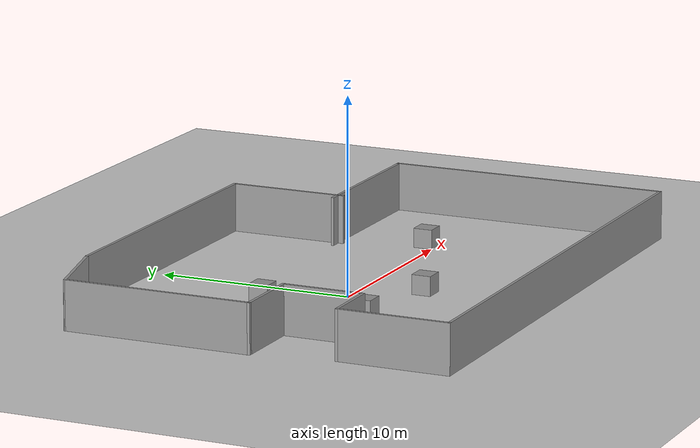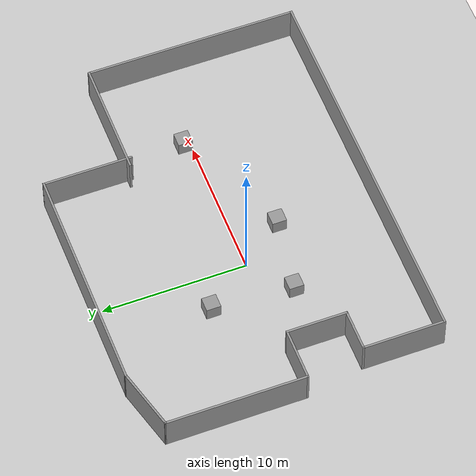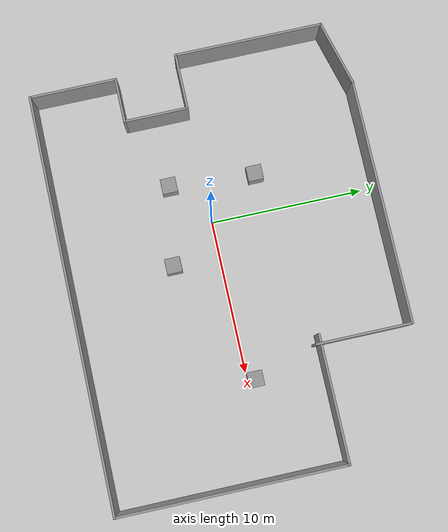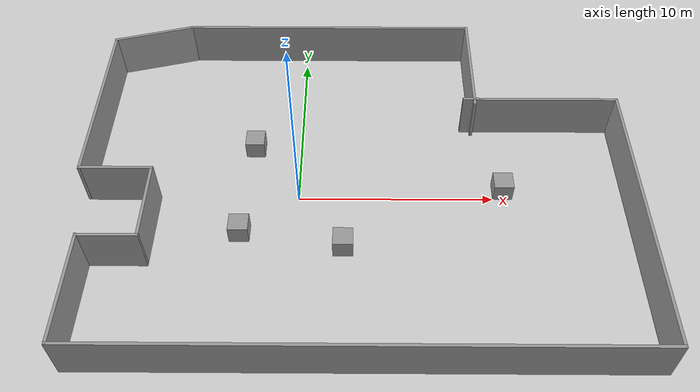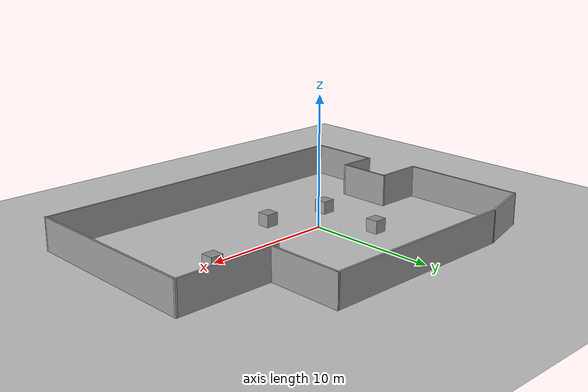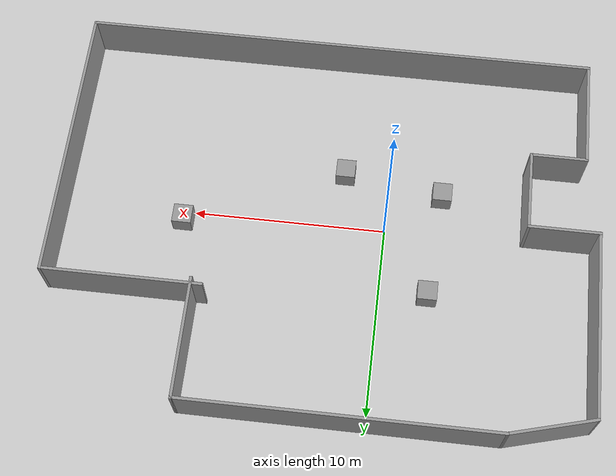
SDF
<sdf version="1.7">
 <world name="default">
  <light name="sun" type="directional">
   <pose>0 0 10 0 -0 0</pose>
   <diffuse>0.8 0.8 0.8 1</diffuse>
   <specular>0.2 0.2 0.2 1</specular>
   <attenuation>
    <range>1000</range>
    <constant>0.9</constant>
    <linear>0.01</linear>
    <quadratic>0.001</quadratic>
   </attenuation>
   <direction>-0.5 0.1 -0.9</direction>
   <spot><inner_angle>0</inner_angle><outer_angle>0</outer_angle><falloff>0</falloff></spot>
  </light>
  <model name="ground_plane">
   <static>1</static>
   <link name="link">
    <collision name="collision">
     <geometry><plane><normal>0 0 1</normal><size>100 100</size></plane></geometry>
     <surface>
      <contact><collide_bitmask>65535</collide_bitmask></contact>
      <friction><ode><mu>100</mu><mu2>50</mu2></ode></friction>
     </surface>
    </collision>
    <visual name="visual">
     <cast_shadows>0</cast_shadows>
     <geometry><plane><normal>0 0 1</normal><size>100 100</size></plane></geometry>
     <material>
      <script><uri>file://media/materials/scripts/gazebo.material</uri><name>Gazebo/Grey</name></script>
     </material>
    </visual>
   </link>
  </model>
  <gravity>0 0 -9.8</gravity>
  <magnetic_field>6e-06 2.3e-05 -4.2e-05</magnetic_field>
  <atmosphere type="adiabatic"/>
  <physics type="ode">
   <max_step_size>0.001</max_step_size>
   <real_time_factor>1</real_time_factor>
   <real_time_update_rate>1000</real_time_update_rate>
  </physics>
  <scene><ambient>0.4 0.4 0.4 1</ambient><background>0.7 0.7 0.7 1</background><shadows>1</shadows></scene>
  <spherical_coordinates>
   <surface_model>EARTH_WGS84</surface_model>
   <latitude_deg>0</latitude_deg>
   <longitude_deg>0</longitude_deg>
   <elevation>0</elevation>
   <heading_deg>0</heading_deg>
  </spherical_coordinates>
  <model name="ceph_world">
   <pose>2.99157 0.511359 0 0 -0 0</pose>
   <link name="Wall_0">
    <collision name="Wall_0_Collision">
     <geometry><box><size>4.25 0.15 2.5</size></box></geometry>
     <pose>0 0 1.25 0 -0 0</pose>
    </collision>
    <visual name="Wall_0_Visual">
     <pose>0 0 1.25 0 -0 0</pose>
     <geometry><box><size>4.25 0.15 2.5</size></box></geometry>
     <material>
      <script><uri>file://media/materials/scripts/gazebo.material</uri><name>Gazebo/Grey</name></script>
      <ambient>1 1 1 1</ambient>
     </material>
     <meta><layer>0</layer></meta>
    </visual>
    <pose>-10.1916 -2.57136 0 0 -0 -1.5708</pose>
   </link>
   <link name="Wall_11">
    <collision name="Wall_11_Collision">
     <geometry><box><size>4.5 0.15 2.5</size></box></geometry>
     <pose>0 0 1.25 0 -0 0</pose>
    </collision>
    <visual name="Wall_11_Visual">
     <pose>0 0 1.25 0 -0 0</pose>
     <geometry><box><size>4.5 0.15 2.5</size></box></geometry>
     <material>
      <script><uri>file://media/materials/scripts/gazebo.material</uri><name>Gazebo/Grey</name></script>
      <ambient>1 1 1 1</ambient>
     </material>
     <meta><layer>0</layer></meta>
    </visual>
    <pose>-11.6907 9.64157 0 0 -0 0.261799</pose>
   </link>
   <link name="Wall_12">
    <collision name="Wall_12_Collision">
     <geometry><box><size>16 0.15 2.5</size></box></geometry>
     <pose>0 0 1.25 0 -0 0</pose>
    </collision>
    <visual name="Wall_12_Visual">
     <pose>0 0 1.25 0 -0 0</pose>
     <geometry><box><size>16 0.15 2.5</size></box></geometry>
     <material>
      <script><uri>file://media/materials/scripts/gazebo.material</uri><name>Gazebo/Grey</name></script>
      <ambient>1 1 1 1</ambient>
     </material>
     <meta><layer>0</layer></meta>
    </visual>
    <pose>-1.6648 10.2045 0 0 -0 0</pose>
   </link>
   <link name="Wall_13">
    <collision name="Wall_13_Collision">
     <geometry><box><size>6.25 0.15 2.5</size></box></geometry>
     <pose>0 0 1.25 0 -0 0</pose>
    </collision>
    <visual name="Wall_13_Visual">
     <pose>0 0 1.25 0 -0 0</pose>
     <geometry><box><size>6.25 0.15 2.5</size></box></geometry>
     <material>
      <script><uri>file://media/materials/scripts/gazebo.material</uri><name>Gazebo/Grey</name></script>
      <ambient>1 1 1 1</ambient>
     </material>
     <meta><layer>0</layer></meta>
    </visual>
    <pose>6.26021 7.1545 0 0 -0 -1.5708</pose>
   </link>
   <link name="Wall_2">
    <collision name="Wall_2_Collision">
     <geometry><box><size>3 0.15 2.5</size></box></geometry>
     <pose>0 0 1.25 0 -0 0</pose>
    </collision>
    <visual name="Wall_2_Visual">
     <pose>0 0 1.25 0 -0 0</pose>
     <geometry><box><size>3 0.15 2.5</size></box></geometry>
     <material>
      <script><uri>file://media/materials/scripts/gazebo.material</uri><name>Gazebo/Grey</name></script>
      <ambient>1 1 1 1</ambient>
     </material>
     <meta><layer>0</layer></meta>
    </visual>
    <pose>-11.6166 -4.62136 0 0 -0 3.14159</pose>
   </link>
   <link name="Wall_3">
    <collision name="Wall_3_Collision">
     <geometry><box><size>5.75 0.15 2.5</size></box></geometry>
     <pose>0 0 1.25 0 -0 0</pose>
    </collision>
    <visual name="Wall_3_Visual">
     <pose>0 0 1.25 0 -0 0</pose>
     <geometry><box><size>5.75 0.15 2.5</size></box></geometry>
     <material>
      <script><uri>file://media/materials/scripts/gazebo.material</uri><name>Gazebo/Grey</name></script>
      <ambient>1 1 1 1</ambient>
     </material>
     <meta><layer>0</layer></meta>
    </visual>
    <pose>-13.0416 -7.42136 0 0 -0 -1.5708</pose>
   </link>
   <link name="Wall_4">
    <collision name="Wall_4_Collision">
     <geometry><box><size>27 0.15 2.5</size></box></geometry>
     <pose>0 0 1.25 0 -0 0</pose>
    </collision>
    <visual name="Wall_4_Visual">
     <pose>0 0 1.25 0 -0 0</pose>
     <geometry><box><size>27 0.15 2.5</size></box></geometry>
     <material>
      <script><uri>file://media/materials/scripts/gazebo.material</uri><name>Gazebo/Grey</name></script>
      <ambient>1 1 1 1</ambient>
     </material>
     <meta><layer>0</layer></meta>
    </visual>
    <pose>0.383428 -10.2214 0 0 -0 0</pose>
   </link>
   <link name="Wall_5">
    <collision name="Wall_5_Collision">
     <geometry><box><size>14.75 0.15 2.5</size></box></geometry>
     <pose>0 0 1.25 0 -0 0</pose>
    </collision>
    <visual name="Wall_5_Visual">
     <pose>0 0 1.25 0 -0 0</pose>
     <geometry><box><size>14.75 0.15 2.5</size></box></geometry>
     <material>
      <script><uri>file://media/materials/scripts/gazebo.material</uri><name>Gazebo/Grey</name></script>
      <ambient>1 1 1 1</ambient>
     </material>
     <meta><layer>0</layer></meta>
    </visual>
    <pose>13.8084 -2.92136 0 0 -0 1.5708</pose>
   </link>
   <link name="Wall_6">
    <collision name="Wall_6_Collision">
     <geometry><box><size>8.25 0.15 2.5</size></box></geometry>
     <pose>0 0 1.25 0 -0 0</pose>
    </collision>
    <visual name="Wall_6_Visual">
     <pose>0 0 1.25 0 -0 0</pose>
     <geometry><box><size>8.25 0.15 2.5</size></box></geometry>
     <material>
      <script><uri>file://media/materials/scripts/gazebo.material</uri><name>Gazebo/Grey</name></script>
      <ambient>1 1 1 1</ambient>
     </material>
     <meta><layer>0</layer></meta>
    </visual>
    <pose>9.75843 4.37864 0 0 -0 3.14159</pose>
   </link>
   <link name="Wall_8">
    <collision name="Wall_8_Collision">
     <geometry><box><size>3.75 0.15 2.5</size></box></geometry>
     <pose>0 0 1.25 0 -0 0</pose>
    </collision>
    <visual name="Wall_8_Visual">
     <pose>0 0 1.25 0 -0 0</pose>
     <geometry><box><size>3.75 0.15 2.5</size></box></geometry>
     <material>
      <script><uri>file://media/materials/scripts/gazebo.material</uri><name>Gazebo/Grey</name></script>
      <ambient>1 1 1 1</ambient>
     </material>
     <meta><layer>0</layer></meta>
    </visual>
    <pose>-11.9916 -0.521359 0 0 -0 3.14159</pose>
   </link>
   <link name="Wall_9">
    <collision name="Wall_9_Collision">
     <geometry><box><size>9.75 0.15 2.5</size></box></geometry>
     <pose>0 0 1.25 0 -0 0</pose>
    </collision>
    <visual name="Wall_9_Visual">
     <pose>0 0 1.25 0 -0 0</pose>
     <geometry><box><size>9.75 0.15 2.5</size></box></geometry>
     <material>
      <script><uri>file://media/materials/scripts/gazebo.material</uri><name>Gazebo/Grey</name></script>
      <ambient>1 1 1 1</ambient>
     </material>
     <meta><layer>0</layer></meta>
    </visual>
    <pose>-13.7916 4.27864 0 0 -0 1.5708</pose>
   </link>
   <static>1</static>
  </model>
  <model name="unit_box">
   <pose>2.3239 -3.04418 0.499995 1e-05 -0 0</pose>
   <link name="link">
    <inertial>
     <mass>1</mass>
     <inertia>
      <ixx>0.166667</ixx>
      <ixy>0</ixy>
      <ixz>0</ixz>
      <iyy>0.166667</iyy>
      <iyz>0</iyz>
      <izz>0.166667</izz>
     </inertia>
    </inertial>
    <collision name="collision"><geometry><box><size>1 1 1</size></box></geometry></collision>
    <visual name="visual">
     <geometry><box><size>1 1 1</size></box></geometry>
     <material>
      <script><name>Gazebo/Grey</name><uri>file://media/materials/scripts/gazebo.material</uri></script>
     </material>
    </visual>
   </link>
  </model>
  <model name="unit_box_0">
   <pose>-2.46746 3.39425 0.499995 0 1e-05 0</pose>
   <link name="link">
    <inertial>
     <mass>1</mass>
     <inertia>
      <ixx>0.166667</ixx>
      <ixy>0</ixy>
      <ixz>0</ixz>
      <iyy>0.166667</iyy>
      <iyz>0</iyz>
      <izz>0.166667</izz>
     </inertia>
    </inertial>
    <collision name="collision"><geometry><box><size>1 1 1</size></box></geometry></collision>
    <visual name="visual">
     <geometry><box><size>1 1 1</size></box></geometry>
     <material>
      <script><name>Gazebo/Grey</name><uri>file://media/materials/scripts/gazebo.material</uri></script>
     </material>
    </visual>
   </link>
  </model>
  <model name="unit_box_1">
   <pose>-2.84883 -2.22173 0.499995 -1e-05 -0 -0</pose>
   <link name="link">
    <inertial>
     <mass>1</mass>
     <inertia>
      <ixx>0.166667</ixx>
      <ixy>0</ixy>
      <ixz>0</ixz>
      <iyy>0.166667</iyy>
      <iyz>0</iyz>
      <izz>0.166667</izz>
     </inertia>
    </inertial>
    <collision name="collision"><geometry><box><size>1 1 1</size></box></geometry></collision>
    <visual name="visual">
     <geometry><box><size>1 1 1</size></box></geometry>
     <material>
      <script><name>Gazebo/Grey</name><uri>file://media/materials/scripts/gazebo.material</uri></script>
     </material>
    </visual>
   </link>
  </model>
  <model name="unit_box_2">
   <pose>10.5185 0.508416 0.5 0 -0 0</pose>
   <link name="link">
    <inertial>
     <mass>1</mass>
     <inertia>
      <ixx>0.166667</ixx>
      <ixy>0</ixy>
      <ixz>0</ixz>
      <iyy>0.166667</iyy>
      <iyz>0</iyz>
      <izz>0.166667</izz>
     </inertia>
    </inertial>
    <collision name="collision"><geometry><box><size>1 1 1</size></box></geometry></collision>
    <visual name="visual">
     <geometry><box><size>1 1 1</size></box></geometry>
     <material>
      <script><name>Gazebo/Grey</name><uri>file://media/materials/scripts/gazebo.material</uri></script>
     </material>
    </visual>
   </link>
  </model>
 </world>
</sdf>
